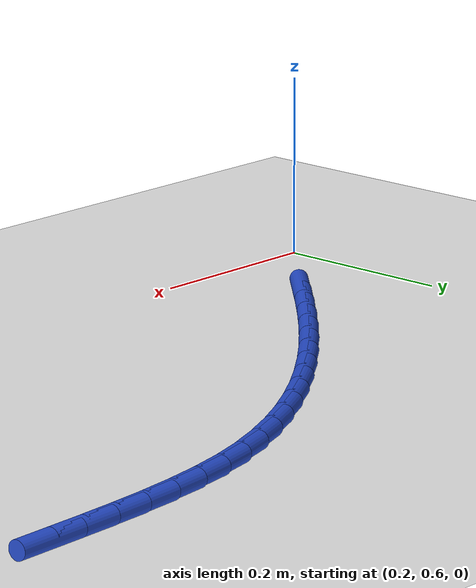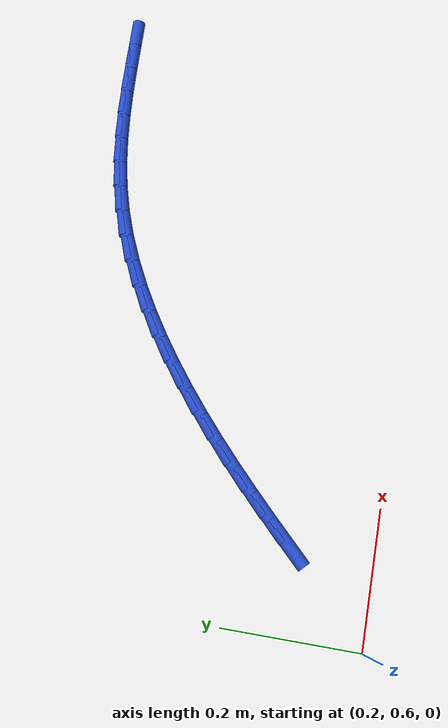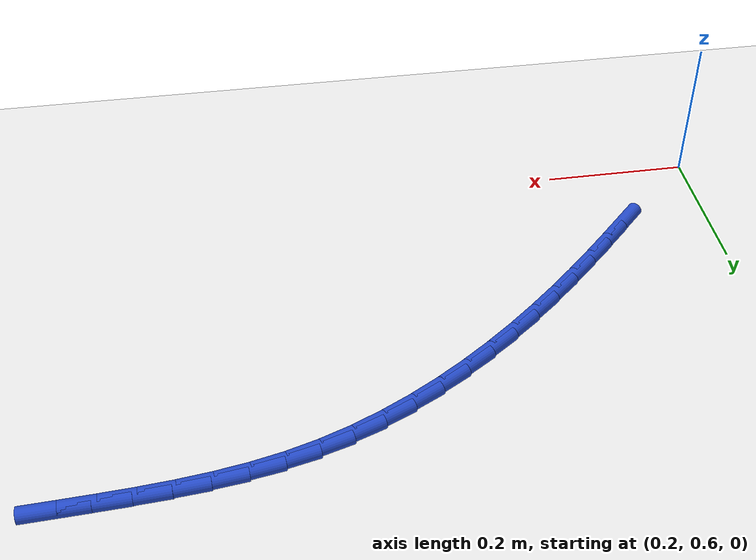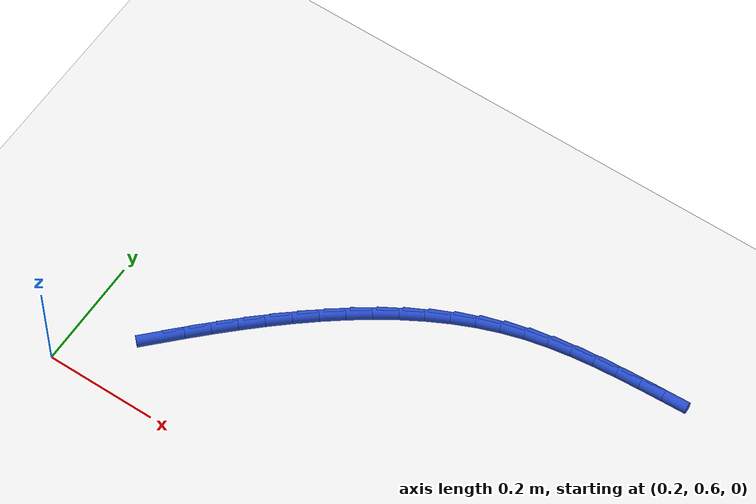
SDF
<sdf version="1.6">
 <world name="default">
  <model name="ground_plane">
   <static>1</static>
   <link name="link">
    <collision name="collision">
     <geometry><plane><normal>0 0 1</normal><size>100 100</size></plane></geometry>
     <surface><friction><ode><mu>100</mu><mu2>50</mu2></ode></friction></surface>
    </collision>
    <visual name="visual">
     <cast_shadows>0</cast_shadows>
     <geometry><plane><normal>0 0 1</normal><size>100 100</size></plane></geometry>
     <material>
      <script><uri>file://media/materials/scripts/gazebo.material</uri><name>Gazebo/WhiteGlow</name></script>
     </material>
    </visual>
   </link>
  </model>
  <model name="line">
   <link name="link_19">
    <pose>0.3284434762644053 0.7255500371596532 0.01 0 1.57 0.7974725901435652</pose>
    <collision name="collision">
     <geometry><cylinder><radius>0.01</radius><length>0.08</length></cylinder></geometry>
    </collision>
    <visual name="visual">
     <material>
      <script><name>Gazebo/Blue</name><uri>file://media/materials/scripts/gazebo.material</uri></script>
     </material>
     <geometry><cylinder><radius>0.01</radius><length>0.08</length></cylinder></geometry>
    </visual>
   </link>
   <link name="link_20">
    <pose>0.3595875800980895 0.7574554649428401 0.01 0 1.57 0.78277559821944</pose>
    <collision name="collision">
     <geometry><cylinder><radius>0.01</radius><length>0.08</length></cylinder></geometry>
    </collision>
    <visual name="visual">
     <material>
      <script><name>Gazebo/Blue</name><uri>file://media/materials/scripts/gazebo.material</uri></script>
     </material>
     <geometry><cylinder><radius>0.01</radius><length>0.08</length></cylinder></geometry>
    </visual>
   </link>
   <link name="link_21">
    <pose>0.3913031995947468 0.7890051666307971 0.01 0 1.57 0.7647550760589527</pose>
    <collision name="collision">
     <geometry><cylinder><radius>0.01</radius><length>0.08</length></cylinder></geometry>
    </collision>
    <visual name="visual">
     <material>
      <script><name>Gazebo/Blue</name><uri>file://media/materials/scripts/gazebo.material</uri></script>
     </material>
     <geometry><cylinder><radius>0.01</radius><length>0.08</length></cylinder></geometry>
    </visual>
   </link>
   <link name="link_22">
    <pose>0.4236042052773001 0.8199993779900784 0.01 0 1.57 0.7432710913145363</pose>
    <collision name="collision">
     <geometry><cylinder><radius>0.01</radius><length>0.08</length></cylinder></geometry>
    </collision>
    <visual name="visual">
     <material>
      <script><name>Gazebo/Blue</name><uri>file://media/materials/scripts/gazebo.material</uri></script>
     </material>
     <geometry><cylinder><radius>0.01</radius><length>0.08</length></cylinder></geometry>
    </visual>
   </link>
   <link name="link_23">
    <pose>0.45650451761970134 0.8502382468940229 0.01 0 1.57 0.7181422257717694</pose>
    <collision name="collision">
     <geometry><cylinder><radius>0.01</radius><length>0.08</length></cylinder></geometry>
    </collision>
    <visual name="visual">
     <material>
      <script><name>Gazebo/Blue</name><uri>file://media/materials/scripts/gazebo.material</uri></script>
     </material>
     <geometry><cylinder><radius>0.01</radius><length>0.08</length></cylinder></geometry>
    </visual>
   </link>
   <link name="link_24">
    <pose>0.4900180570959021 0.8795219212159696 0.01 0 1.57 0.6891471883845647</pose>
    <collision name="collision">
     <geometry><cylinder><radius>0.01</radius><length>0.08</length></cylinder></geometry>
    </collision>
    <visual name="visual">
     <material>
      <script><name>Gazebo/Blue</name><uri>file://media/materials/scripts/gazebo.material</uri></script>
     </material>
     <geometry><cylinder><radius>0.01</radius><length>0.08</length></cylinder></geometry>
    </visual>
   </link>
   <link name="link_25">
    <pose>0.5241587441798541 0.9076505488292574 0.01 0 1.57 0.6560302871846188</pose>
    <collision name="collision">
     <geometry><cylinder><radius>0.01</radius><length>0.08</length></cylinder></geometry>
    </collision>
    <visual name="visual">
     <material>
      <script><name>Gazebo/Blue</name><uri>file://media/materials/scripts/gazebo.material</uri></script>
     </material>
     <geometry><cylinder><radius>0.01</radius><length>0.08</length></cylinder></geometry>
    </visual>
   </link>
   <link name="link_26">
    <pose>0.5589404993455092 0.9344242776072257 0.01 0 1.57 0.6185098906509917</pose>
    <collision name="collision">
     <geometry><cylinder><radius>0.01</radius><length>0.08</length></cylinder></geometry>
    </collision>
    <visual name="visual">
     <material>
      <script><name>Gazebo/Blue</name><uri>file://media/materials/scripts/gazebo.material</uri></script>
     </material>
     <geometry><cylinder><radius>0.01</radius><length>0.08</length></cylinder></geometry>
    </visual>
   </link>
   <link name="link_27">
    <pose>0.5943772430668193 0.9596432554232133 0.01 0 1.57 0.5762915023212554</pose>
    <collision name="collision">
     <geometry><cylinder><radius>0.01</radius><length>0.08</length></cylinder></geometry>
    </collision>
    <visual name="visual">
     <material>
      <script><name>Gazebo/Blue</name><uri>file://media/materials/scripts/gazebo.material</uri></script>
     </material>
     <geometry><cylinder><radius>0.01</radius><length>0.08</length></cylinder></geometry>
    </visual>
   </link>
   <link name="link_28">
    <pose>0.6304828958177356 0.9831076301505588 0.01 0 1.57 0.5290873310821678</pose>
    <collision name="collision">
     <geometry><cylinder><radius>0.01</radius><length>0.08</length></cylinder></geometry>
    </collision>
    <visual name="visual">
     <material>
      <script><name>Gazebo/Blue</name><uri>file://media/materials/scripts/gazebo.material</uri></script>
     </material>
     <geometry><cylinder><radius>0.01</radius><length>0.08</length></cylinder></geometry>
    </visual>
   </link>
   <link name="link_29">
    <pose>0.6672713780722108 1.0046175496626017 0.01 0 1.57 0.47664425979452857</pose>
    <collision name="collision">
     <geometry><cylinder><radius>0.01</radius><length>0.08</length></cylinder></geometry>
    </collision>
    <visual name="visual">
     <material>
      <script><name>Gazebo/Blue</name><uri>file://media/materials/scripts/gazebo.material</uri></script>
     </material>
     <geometry><cylinder><radius>0.01</radius><length>0.08</length></cylinder></geometry>
    </visual>
   </link>
   <link name="link_30">
    <pose>0.7047566103041952 1.0239731618326802 0.01 0 1.57 0.41878159249070074</pose>
    <collision name="collision">
     <geometry><cylinder><radius>0.01</radius><length>0.08</length></cylinder></geometry>
    </collision>
    <visual name="visual">
     <material>
      <script><name>Gazebo/Blue</name><uri>file://media/materials/scripts/gazebo.material</uri></script>
     </material>
     <geometry><cylinder><radius>0.01</radius><length>0.08</length></cylinder></geometry>
    </visual>
   </link>
   <link name="link_31">
    <pose>0.742952512987642 1.0409746145341343 0.01 0 1.57 0.3554384833448973</pose>
    <collision name="collision">
     <geometry><cylinder><radius>0.01</radius><length>0.08</length></cylinder></geometry>
    </collision>
    <visual name="visual">
     <material>
      <script><name>Gazebo/Blue</name><uri>file://media/materials/scripts/gazebo.material</uri></script>
     </material>
     <geometry><cylinder><radius>0.01</radius><length>0.08</length></cylinder></geometry>
    </visual>
   </link>
   <link name="link_32">
    <pose>0.781873006596502 1.0554220556403022 0.01 0 1.57 0.2868626155793143</pose>
    <collision name="collision">
     <geometry><cylinder><radius>0.01</radius><length>0.08</length></cylinder></geometry>
    </collision>
    <visual name="visual">
     <material>
      <script><name>Gazebo/Blue</name><uri>file://media/materials/scripts/gazebo.material</uri></script>
     </material>
     <geometry><cylinder><radius>0.01</radius><length>0.08</length></cylinder></geometry>
    </visual>
   </link>
   <link name="link_33">
    <pose>0.8215315670307088 1.0671212993282142 0.01 0 1.57 0.21947225379266788</pose>
    <collision name="collision">
     <geometry><cylinder><radius>0.01</radius><length>0.08</length></cylinder></geometry>
    </collision>
    <visual name="visual">
     <material>
      <script><name>Gazebo/Blue</name><uri>file://media/materials/scripts/gazebo.material</uri></script>
     </material>
     <geometry><cylinder><radius>0.01</radius><length>0.08</length></cylinder></geometry>
    </visual>
   </link>
   <link name="link_34">
    <pose>0.8619218349955481 1.07613096860286 0.01 0 1.57 0.16228789919493547</pose>
    <collision name="collision">
     <geometry><cylinder><radius>0.01</radius><length>0.08</length></cylinder></geometry>
    </collision>
    <visual name="visual">
     <material>
      <script><name>Gazebo/Blue</name><uri>file://media/materials/scripts/gazebo.material</uri></script>
     </material>
     <geometry><cylinder><radius>0.01</radius><length>0.08</length></cylinder></geometry>
    </visual>
   </link>
   <link name="link_35">
    <pose>0.9030101023063313 1.082858260856509 0.01 0 1.57 0.11629887673650142</pose>
    <collision name="collision">
     <geometry><cylinder><radius>0.01</radius><length>0.08</length></cylinder></geometry>
    </collision>
    <visual name="visual">
     <material>
      <script><name>Gazebo/Blue</name><uri>file://media/materials/scripts/gazebo.material</uri></script>
     </material>
     <geometry><cylinder><radius>0.01</radius><length>0.08</length></cylinder></geometry>
    </visual>
   </link>
   <link name="link_36">
    <pose>0.9447606646905307 1.0877358145540368 0.01 0 1.57 0.08147769296634808</pose>
    <collision name="collision">
     <geometry><cylinder><radius>0.01</radius><length>0.08</length></cylinder></geometry>
    </collision>
    <visual name="visual">
     <material>
      <script><name>Gazebo/Blue</name><uri>file://media/materials/scripts/gazebo.material</uri></script>
     </material>
     <geometry><cylinder><radius>0.01</radius><length>0.08</length></cylinder></geometry>
    </visual>
   </link>
   <link name="link_37">
    <pose>0.9871378178756175 1.0911962681603193 0.01 0 1.57 0.05756038461225209</pose>
    <collision name="collision">
     <geometry><cylinder><radius>0.01</radius><length>0.08</length></cylinder></geometry>
    </collision>
    <visual name="visual">
     <material>
      <script><name>Gazebo/Blue</name><uri>file://media/materials/scripts/gazebo.material</uri></script>
     </material>
     <geometry><cylinder><radius>0.01</radius><length>0.08</length></cylinder></geometry>
    </visual>
   </link>
   <link name="link_38">
    <pose>1.0301058575890645 1.093672260140233 0.01 0 1.57 0.04418139509721963</pose>
    <collision name="collision">
     <geometry><cylinder><radius>0.01</radius><length>0.08</length></cylinder></geometry>
    </collision>
    <visual name="visual">
     <material>
      <script><name>Gazebo/Blue</name><uri>file://media/materials/scripts/gazebo.material</uri></script>
     </material>
     <geometry><cylinder><radius>0.01</radius><length>0.08</length></cylinder></geometry>
    </visual>
   </link>
   <link name="link_39">
    <pose>1.0736290795583432 1.095596428958653 0.01 0 1.57 0.04095967337707029</pose>
    <collision name="collision">
     <geometry><cylinder><radius>0.01</radius><length>0.08</length></cylinder></geometry>
    </collision>
    <visual name="visual">
     <material>
      <script><name>Gazebo/Blue</name><uri>file://media/materials/scripts/gazebo.material</uri></script>
     </material>
     <geometry><cylinder><radius>0.01</radius><length>0.08</length></cylinder></geometry>
    </visual>
   </link>
  </model>
 </world>
</sdf>
